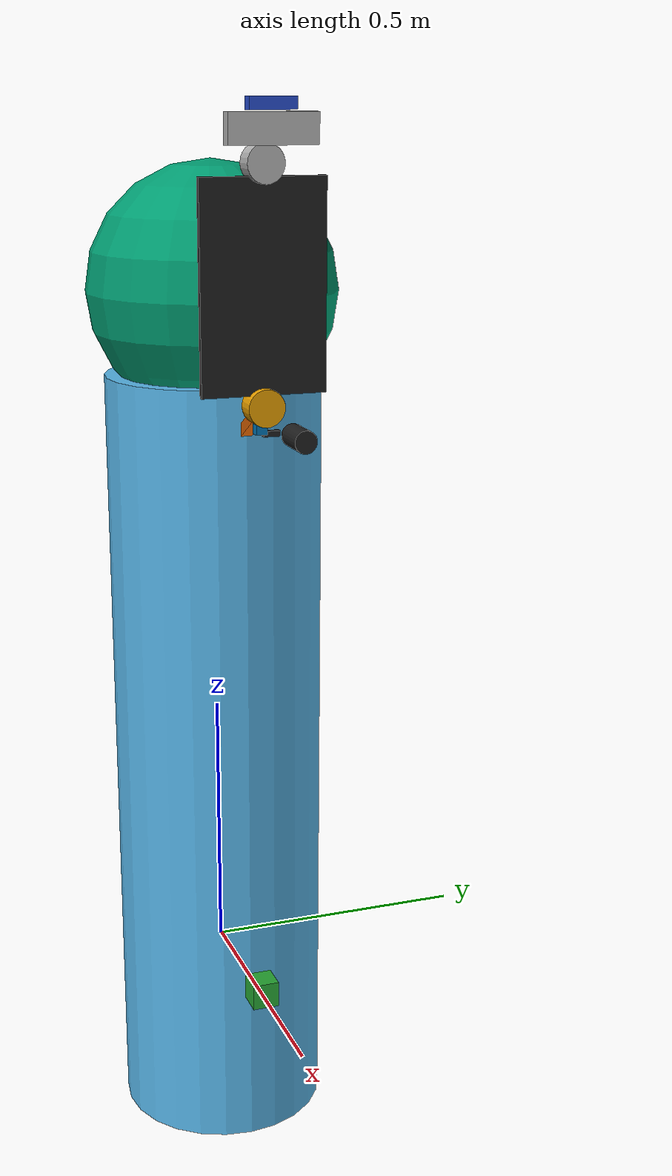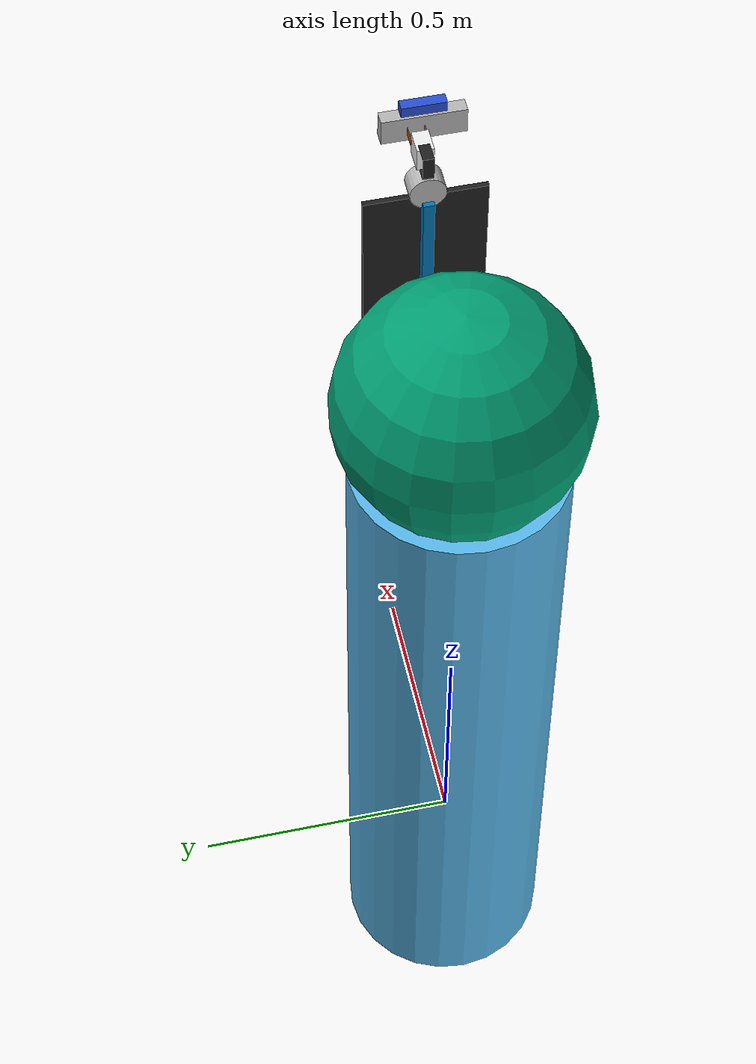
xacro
<?xml version="1.0" ?>
<robot name="eddy" xmlns:xacro="http://www.ros.org/wiki/xacro">

  <!-- All offsets are placeholder values ATM -->
  <xacro:property name="sentrybot_mass" value="20.0" />
  <xacro:property name="sentrybot_box_x" value="1.5" />
  <xacro:property name="sentrybot_box_y" value="1.5" />
  <xacro:property name="sentrybot_box_z" value="2.0" />
  <xacro:property name="sentrybot_radius" value="0.33" />
  <xacro:property name="sentrybot_height" value="1.5" />
  <xacro:property name="sentrybot_mesh_offset" value="0.4" />

  <xacro:property name="PI" value="3.14159" />

  <xacro:property name="alum_ext_horizontal_length" value="0.035" />
  <xacro:property name="alum_ext_vertical_length" value="0.4256" />
  <xacro:property name="alum_ext_SlopeBar_length" value="0.22" />
  <xacro:property name="alum_ext_general_dim" value="0.02" />

  <xacro:property name="screen_height" value="0.3556" />
  <xacro:property name="screen_width" value="0.22" />
  <xacro:property name="screen_thick" value="0.01" />

  <xacro:property name="ellipse_length" value="0.04" />
  <xacro:property name="ellipse_radius" value="0.0324" />

  <xacro:property name="laser_dim" value="0.05" />
  <xacro:property name="laser_ground_ele" value="0.011" />
  <xacro:property name="imu_dim" value="0.05" />

  <xacro:property name="PTU_base_length" value="0.035" />
  <xacro:property name="PTU_base_width" value="0.02" />
  <xacro:property name="PTU_vertical_length" value="0.045" />
  <xacro:property name="PTU_vertical_width" value="0.02" />
  <xacro:property name="PTU_base_heigth" value="0.001" />

  <xacro:property name="PTU_PAN_length" value="0.045" />
  <xacro:property name="PTU_PAN_width" value="0.03" />

  <xacro:property name="TILT_length" value="0.03" />
  <xacro:property name="TILT_width" value="0.015" />
  <xacro:property name="TILT_heigth" value="0.001" />

  <xacro:property name="TILT_upper_length" value="0.15" />
  <xacro:property name="TILT_upper_width" value="0.05" />
  <xacro:property name="TILT_upper_heigth" value="0.025" />

  <xacro:property name="camera_length" value="0.08" />
  <xacro:property name="camera_width" value="0.02" />
  <xacro:property name="camera_heigth" value="0.02" />

  <xacro:property name="microphone_bar_length" value="0.03" />
  <xacro:property name="microphone_bar_dim" value="0.01" />

  <xacro:macro name="I_cuboid" params="m x y z">
    <inertial>
      <mass value="${m}" />
      <inertia  ixx="${m*(y*y+z*z)/12}" iyy="${m*(x*x+z*z)/12}" izz="${m*(x*x+z*z)/12}"
                ixy = "0" ixz = "0" iyz = "0" />
    </inertial>
  </xacro:macro>

  <xacro:macro name="default_inertial" params="mass">
    <inertial>
      <mass value="${mass}"/>
      <inertia ixx="1.0" ixy="0.0" ixz="0.0" iyy="1.0" iyz="0.0" izz="1.0"/>
    </inertial>
  </xacro:macro>

  <xacro:include filename="$(find sentrybot_gazebo)/urdf/sentrybot.gazebo.xarco"/>

  <link name="base_footprint">
  </link>

  <joint name="base_joint" type="fixed">
    <parent link="base_footprint"/>
    <child link="base_link"/>
    <origin xyz="0.0 0.0 0" rpy="0 0 0"/>
    <axis xyz="0 0 1" />
  </joint>

  <link name="base_link">
    <visual>
      <origin xyz="0 0 ${sentrybot_mesh_offset}" rpy="0 0 0"/>
      <geometry>
        <cylinder radius="${0.2}" length="${sentrybot_height}" />
      </geometry>
    </visual>
    <collision>
      <origin xyz="0 0 ${sentrybot_height/2}" rpy="0 0 0"/>
      <geometry>
       <cylinder radius="${sentrybot_radius}" length="${sentrybot_height}" />
      </geometry>
    </collision>
    <xacro:I_cuboid m="${sentrybot_mass}" x="${sentrybot_box_x}" y="${sentrybot_box_y}" z="${sentrybot_box_z}" />
  </link>

  <joint name="base_head_to_base" type="fixed">
    <parent link="base_link"/>
    <child link="head"/>
    <origin xyz="0.0 0.0 ${sentrybot_height - 0.2}" rpy="0 0 0"/>
    <axis xyz="0 0 1" />
  </joint>

  <link name="head">
    <visual>
      <geometry>
        <sphere radius="${0.23}"/>
      </geometry>
    </visual>
  </link>

  <!-- Aluminum bar HORIZONTAL -->
  <joint name="joint_base_to_horizontal_alum" type="fixed">
    <parent link="head"/>
    <child link="link_horizontal_alum"/>
    <origin xyz="${0.23+alum_ext_horizontal_length/2} 0 0" rpy="0 0 0"/>
  </joint>

  <link name="link_horizontal_alum">
    <visual>
      <geometry>
        <box size="${alum_ext_horizontal_length} ${alum_ext_general_dim} ${alum_ext_general_dim}"/>
      </geometry>
    </visual>
  </link>

  <!-- Aluminum bar VERTICAL -->
  <joint name="joint_horizontal_to_vertical_alum" type="fixed">
    <parent link="link_horizontal_alum"/>
    <child link="link_vertical_alum"/>
    <origin xyz="${alum_ext_horizontal_length-0.007} 0 0" rpy="0 0 0"/>
  </joint>

  <link name="link_vertical_alum">
    <visual>
      <geometry>
        <box size="${alum_ext_general_dim} ${alum_ext_general_dim} ${alum_ext_vertical_length}"/>
      </geometry>
    </visual>
  </link>

  <!-- Aluminum bar with angle -->
  <joint name="joint_base_to_slopBar_alum" type="fixed">
    <parent link="base_footprint"/>
    <child link="link_slopeBar_alum"/>
    <origin xyz="${(sentrybot_radius/2)} 0 ${sentrybot_height-0.35+(-screen_height/4)}" rpy="0 -0.523599 0"/>
  </joint>

  <link name="link_slopeBar_alum">
    <visual>
      <geometry>
        <box size="${alum_ext_SlopeBar_length} ${alum_ext_general_dim} ${alum_ext_general_dim}"/>
      </geometry>
    </visual>
  </link>

  <!-- Screen Unit -->
  <joint name="base_to_screen" type="fixed">
    <parent link="link_vertical_alum"/>
    <child link="link_screen"/>
    <origin xyz="${alum_ext_general_dim} 0.0 0.035" rpy="0.0 1.57075 0.0"/>
  </joint>

  <gazebo reference="link_screen">
    <material>Gazebo/Black</material>
  </gazebo>
  <link name="link_screen">
    <visual>
      <origin xyz="0 0 0" rpy="0 0 0"/>
      <geometry>
       <box size="${screen_height} ${screen_width} ${screen_thick}" />
      </geometry>
    </visual>
    <xacro:default_inertial mass="0.0000005"/>
  </link>

  <!-- Upper Ellipse Unit -->
  <joint name="joint_screen_to_ellipse_upper" type="fixed">
    <parent link="link_screen"/>
    <child link="link_ellipse_upper"/>
    <origin xyz="${(-screen_height/2)-(ellipse_length/2)} 0.0 0.0" rpy="0.0 -1.57075 0.0"/>
  </joint>

  <link name="link_ellipse_upper">
    <visual>
      <origin xyz="0 0 0" rpy="0 1.57075 0"/>
      <geometry>
        <cylinder length="${ellipse_length}" radius="${ellipse_radius}"/>
      </geometry>
    </visual>
  </link>

  <!-- Lower Ellipse Unit -->
  <joint name="joint_screen_to_ellipse_lower" type="fixed">
    <parent link="link_screen"/>
    <child link="link_ellipse_lower"/>
    <origin xyz="${(screen_height/2)+(ellipse_length/2)} 0.0 0.0" rpy="0.0 1.57075 0.0"/>
  </joint>

  <link name="link_ellipse_lower">
    <visual>
      <origin xyz="0 0 0" rpy="0 1.57075 0"/>
      <geometry>
        <cylinder length="${ellipse_length}" radius="${ellipse_radius}"/>
      </geometry>
    </visual>
  </link>

  <!-- PTU_BASE_BOTTOM-->
  <joint name="joint_top_ellipse_to_PTU_base_bottom" type="fixed">
    <parent link="link_ellipse_upper"/>
    <child link="PTU_base_bottom"/>
    <origin xyz="0.0 0.0 ${ellipse_radius+PTU_base_heigth}" rpy="0 0 0"/>
  </joint>

  <gazebo reference="PTU_base_bottom">
    <material>Gazebo/Black</material>
  </gazebo>
  <link name="PTU_base_bottom">
    <visual>
      <origin xyz="0 0 0" rpy="0 0 0"/>
      <geometry>
        <box size="${PTU_base_length} ${PTU_base_width} ${PTU_base_heigth}"/>
      </geometry>
    </visual>
    <xacro:default_inertial mass="0.0000005"/>
  </link>

  <!-- PTU_Vertical-->
  <joint name="joint_PTU_base_PTU_base_vertical" type="fixed">
    <parent link="PTU_base_bottom"/>
    <child link="PTU_base_vertical"/>
    <origin xyz="${(-PTU_base_length/2)+(PTU_base_heigth/2)} 0.0 ${PTU_vertical_length/2}" rpy="0 0 0"/>
  </joint>

  <gazebo reference="PTU_base_vertical">
    <material>Gazebo/Black</material>
  </gazebo>
  <link name="PTU_base_vertical">
    <visual>
      <origin xyz="0 0 0" rpy="0 0 0"/>
      <geometry>
        <box size="${PTU_base_heigth} ${PTU_base_width} ${PTU_vertical_length}"/>
      </geometry>
    </visual>
    <xacro:default_inertial mass="0.0000005"/>
  </link>

  <!-- PTU_BASE_upper-->
  <joint name="joint_top_ellipse_to_PTU_base_upper" type="fixed">
    <parent link="PTU_base_vertical"/>
    <child link="PTU_base_upper"/>
    <origin xyz="${PTU_base_length/2 - (PTU_base_heigth/2)} 0.0 ${PTU_vertical_length/2}" rpy="0 0 0"/>
  </joint>

  <gazebo reference="PTU_base_upper">
    <material>Gazebo/Black</material>
  </gazebo>
  <link name="PTU_base_upper">
    <visual>
      <origin xyz="0 0 0" rpy="0 0 0"/>
      <geometry>
        <box size="${PTU_base_length} ${PTU_base_width} ${PTU_base_heigth}"/>
      </geometry>
    </visual>
    <xacro:default_inertial mass="0.0000005"/>
  </link>

  <!-- link_PTU_PAN-->
  <joint name="joint_PTU_base_bottom_to_PTU_PAN" type="revolute">
    <axis xyz="0 0 1"/>
    <limit effort="1000.0" lower="${-PI/2}" upper="${PI/2}" velocity="2.5"/>
    <parent link="PTU_base_bottom"/>
    <child link="PTU_PAN"/>
    <origin xyz="${(5*PTU_PAN_length)/8} 0.0 ${(PTU_vertical_length)/2}" rpy="0 0 0"/>
  </joint>

  <gazebo reference="PTU_PAN">
    <material>Gazebo/Black</material>
  </gazebo>
  <link name="PTU_PAN">
    <visual>
      <origin xyz="0 0 0" rpy="0 0 0"/>
      <geometry>
        <box size="${PTU_PAN_length} ${PTU_PAN_width}  ${PTU_vertical_length-PTU_base_heigth}"/>
      </geometry>
    </visual>
    <xacro:default_inertial mass="0.000005"/>
  </link>

  <!-- link_TILT_RIGHT_SIDE-->
  <joint name="joint_TILT_Rside_to_PTU_PAN" type="revolute">
    <axis xyz="0 1 0"/>
    <limit effort="1000.0" lower="${-PI/2}" upper="${PI/2}" velocity="2.5"/>
    <parent link="PTU_PAN"/>
    <child link="TILT_R_side"/>
    <origin xyz="${0.75*PTU_PAN_length} ${PTU_PAN_width/2} 0" rpy="0 0 0"/>
  </joint>

  <link name="TILT_R_side">
    <visual>
      <origin xyz="0 0 0" rpy="0 0 0"/>
      <geometry>
        <box size="${TILT_length} ${TILT_heigth}  ${TILT_width}"/>
      </geometry>
    </visual>
    <xacro:default_inertial mass="0.000005"/>
  </link>

  <!-- link_TILT_LEFT_SIDE-->
  <joint name="joint_TILT_Lside_to_PTU_PAN" type="revolute">
    <axis xyz="0 1 0"/>
    <limit effort="1000.0" lower="${-PI/2}" upper="${PI/2}" velocity="2.5"/>
    <parent link="PTU_PAN"/>
    <child link="TILT_L_side"/>
    <origin xyz="${0.75*PTU_PAN_length} ${-(PTU_PAN_width/2)} 0" rpy="0 0 0"/>
  </joint>

  <link name="TILT_L_side">
    <visual>
      <origin xyz="0 0 0" rpy="0 0 0"/>
      <geometry>
        <box size="${TILT_length} ${TILT_heigth}  ${TILT_width}"/>
      </geometry>
    </visual>
    <xacro:default_inertial mass="0.000005"/>
  </link>

 <!-- link_TILT_UPPER-->
  <joint name="joint_TILT_UPPER_to_TILT_SIDES" type="fixed">
    <parent link="TILT_L_side"/>
    <child link="TILT_UPPER"/>
    <origin xyz="${TILT_length} 0 0" rpy="0 0 0"/>
  </joint>

  <gazebo reference="PTU_PAN">
    <material>Gazebo/White</material>
  </gazebo>
  <link name="TILT_UPPER">
    <visual>
      <geometry>
        <box size="${TILT_upper_heigth} ${TILT_upper_length}  ${TILT_upper_width}"/>
      </geometry>
    </visual>
    <xacro:default_inertial mass="0.000005"/>
  </link>

  <!-- Camera Unit -->
  <joint name="joint_PTU_camera_to_TILT_UPPER" type="fixed">
    <parent link="TILT_UPPER"/>
    <child link="PTU_camera"/>
    <origin xyz="0 0 ${TILT_upper_length/4}" rpy="0 0 0"/>
  </joint>

  <gazebo reference="PTU_camera">
    <material>Gazebo/Blue</material>
  </gazebo>
  <link name="PTU_camera">
    <visual>
      <geometry>
        <box size="${camera_width} ${camera_length} ${camera_heigth}" />
      </geometry>
    </visual>
    <collision>
      <geometry>
        <box size="${camera_width} ${camera_length} ${camera_heigth}" />
      </geometry>
    </collision>
    <xacro:I_cuboid m="0.000005" x="${camera_length}" y="${camera_width}" z="${camera_heigth}"/>
  </link>

 <!-- Microphone bar Unit -->
  <joint name="joint_alum_vertcal_to_micro" type="fixed">
    <parent link="link_vertical_alum"/>
    <child link="link_microphone"/>
    <origin xyz="0 ${PTU_vertical_width} ${-alum_ext_vertical_length/2}" rpy="0 0 0"/>
  </joint>

  <gazebo reference="link_microphone">
    <material>Gazebo/Black</material>
  </gazebo>
  <link name="link_microphone">
    <visual>
      <geometry>
        <box size="${microphone_bar_dim} ${microphone_bar_length} ${microphone_bar_dim}" />
      </geometry>
    </visual>
  </link>

  <!-- Microphone base_bar Unit -->
  <joint name="joint_microphone_bar_to_base_bar" type="fixed">
    <parent link="link_microphone"/>
    <child link="link_microphone_base_bar"/>
    <origin xyz="${0.02} ${microphone_bar_length} 0" rpy="0 -1.5708 0"/>
  </joint>

  <gazebo reference="link_microphone_base_bar">
    <material>Gazebo/Black</material>
  </gazebo>
  <link name="link_microphone_base_bar">
    <visual>
      <geometry>
        <cylinder length="0.04" radius="0.009"/>
      </geometry>
    </visual>
  </link>

  <!-- Microphone Unit -->
  <joint name="joint_microphone_basae_bar_to_microphone" type="fixed">
    <parent link="link_microphone_base_bar"/>
    <child link="link_micro"/>
    <origin xyz="0 0 -0.04" rpy="0 0 0"/>
  </joint>

  <gazebo reference="link_micro">
    <material>Gazebo/Black</material>
  </gazebo>
  <link name="link_micro">
    <visual>
      <geometry>
        <cylinder length="0.07" radius="0.02"/>
      </geometry>
    </visual>
  </link>

  <!-- Laser Unit -->
  <joint name="laser_to_based" type="fixed">
    <axis xyz="0 0 1" />
    <parent link="base_footprint"/>
    <child link="link_laser"/>
    <origin xyz="${0.27} 0.0 ${laser_ground_ele}" rpy="0 0 0"/>
  </joint>

  <gazebo reference="link_laser">
    <material>Gazebo/Green</material>
  </gazebo>
  <link name="link_laser">
    <visual>
      <geometry>
        <box size="${laser_dim} ${laser_dim} ${laser_dim}" />
      </geometry>
    </visual>
    <collision>
      <geometry>
        <box size="${laser_dim} ${laser_dim} ${laser_dim}" />
      </geometry>
    </collision>
    <xacro:I_cuboid m="0.000005" x="${laser_dim}" y="${laser_dim}" z="${laser_dim}"/>
  </link>

  <!-- IMU Unit-->
  <joint name="imu_to_based" type="fixed">
    <parent link="base_footprint"/>
    <child link="link_imu"/>
    <origin xyz="0.0 0.0 ${sentrybot_height/2}" rpy="0 0 0"/>
  </joint>

  <link name="link_imu">
    <visual>
      <origin xyz="0 0 0" rpy="0 0 0"/>
      <geometry>
        <box size="${imu_dim} ${imu_dim} ${imu_dim}" />
      </geometry>
    </visual>
    <collision>
      <geometry>
        <box size="${imu_dim} ${imu_dim} ${imu_dim}" />
      </geometry>
    </collision>
  </link>

</robot>
